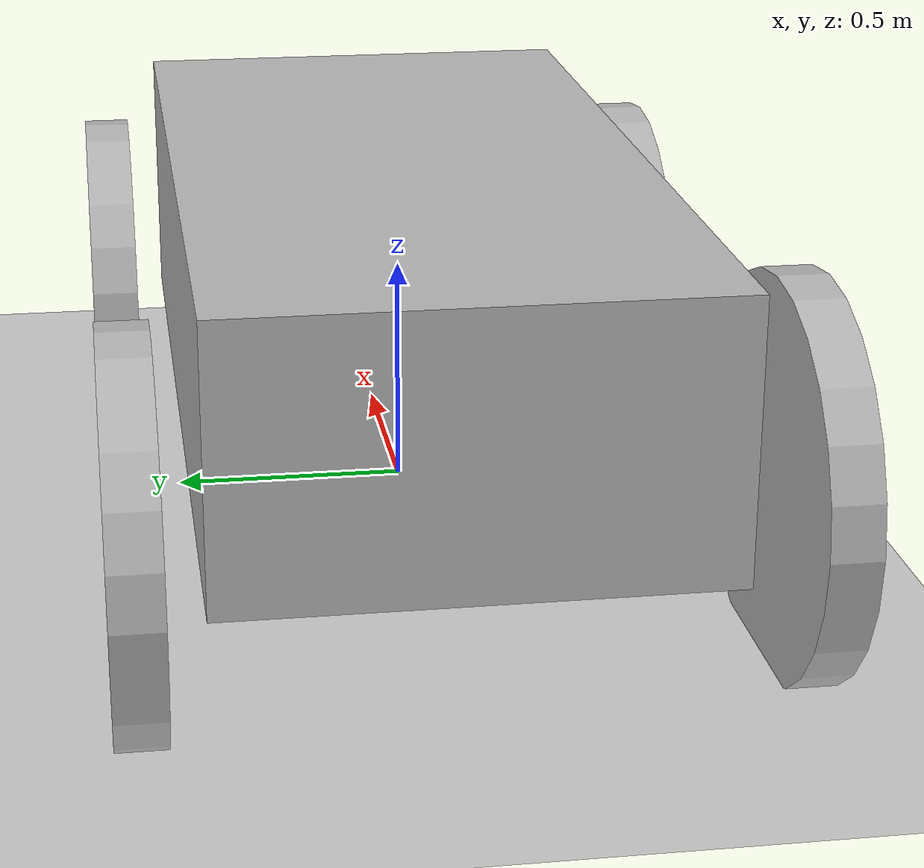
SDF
<?xml version="1.0"?>
<sdf version="1.6">
  <world name="default">

    <include>
      <uri>model://ground_plane</uri>
    </include>

    <include>
      <uri>model://sun</uri>
    </include>

    <model name='vehicle'>
      <pose>0 0 0.325 0 -0 0</pose>

      <link name='chassis'>
        <pose>-0.151427 -0 0.175 0 -0 0</pose>
        <inertial>
          <mass>1.14395</mass>
          <inertia>
            <ixx>0.126164</ixx>
            <ixy>0</ixy>
            <ixz>0</ixz>
            <iyy>0.416519</iyy>
            <iyz>0</iyz>
            <izz>0.481014</izz>
          </inertia>
        </inertial>
        <visual name='visual'>
          <geometry>
            <box>
              <size>2.01142 1 0.568726</size>
            </box>
          </geometry>
        </visual>
        <collision name='collision'>
          <geometry>
            <box>
              <size>2.01142 1 0.568726</size>
            </box>
          </geometry>
        </collision>
      </link>

      <link name='left_wheel'>
        <pose>0.554283 0.625029 -0.025 -1.5707 0 0</pose>
        <inertial>
          <mass>2</mass>
          <inertia>
            <ixx>0.145833</ixx>
            <ixy>0</ixy>
            <ixz>0</ixz>
            <iyy>0.145833</iyy>
            <iyz>0</iyz>
            <izz>0.125</izz>
          </inertia>
        </inertial>
        <visual name="visual">
          <geometry>
            <cylinder>
              <radius>.4</radius>
              <length>.1</length>
            </cylinder>
          </geometry>
        </visual>
        <collision name="collision">
          <geometry>
            <cylinder>
              <radius>.4</radius>
              <length>.1</length>
            </cylinder>
          </geometry>
          <surface>
            <friction>
              <ode>
                <mu>1</mu>
                <mu2>1</mu2>
                <slip1>0</slip1>
                <slip2>0</slip2>
              </ode>
            </friction>
            <contact>
              <ode>
                <soft_cfm>0</soft_cfm>
                <soft_erp>0.2</soft_erp>
                <kp>1e+13</kp>
                <kd>1</kd>
                <max_vel>0.01</max_vel>
                <min_depth>0.01</min_depth>
              </ode>
            </contact>
          </surface>
        </collision>
      </link>

      <link name='right_wheel'>
        <pose>0.554282 -0.625029 -0.025 -1.5707 0 0</pose>
        <inertial>
          <mass>2</mass>
          <inertia>
            <ixx>0.145833</ixx>
            <ixy>0</ixy>
            <ixz>0</ixz>
            <iyy>0.145833</iyy>
            <iyz>0</iyz>
            <izz>0.125</izz>
          </inertia>
        </inertial>
        <visual name="visual">
          <geometry>
            <cylinder>
              <radius>.4</radius>
              <length>.1</length>
            </cylinder>
          </geometry>
        </visual>
        <collision name="collision">
          <geometry>
            <cylinder>
              <radius>.4</radius>
              <length>.1</length>
            </cylinder>
          </geometry>
          <surface>
            <friction>
              <ode>
                <mu>1</mu>
                <mu2>1</mu2>
                <slip1>0</slip1>
                <slip2>0</slip2>
              </ode>
            </friction>
            <contact>
              <ode>
                <soft_cfm>0</soft_cfm>
                <soft_erp>0.2</soft_erp>
                <kp>1e+13</kp>
                <kd>1</kd>
                <max_vel>0.01</max_vel>
                <min_depth>0.01</min_depth>
              </ode>
            </contact>
          </surface>
        </collision>
      </link>
      <link name='right_rear_wheel'>
        <pose>-0.954282 -0.625029 0.025 -1.5707 0 0</pose>
        <inertial>
          <mass>2</mass>
          <inertia>
            <ixx>0.145833</ixx>
            <ixy>0</ixy>
            <ixz>0</ixz>
            <iyy>0.145833</iyy>
            <iyz>0</iyz>
            <izz>0.125</izz>
          </inertia>
        </inertial>
        <visual name="visual">
          <geometry>
            <cylinder>
              <radius>.4</radius>
              <length>.1</length>
            </cylinder>
          </geometry>
        </visual>
        <collision name="collision">
          <geometry>
            <cylinder>
              <radius>.4</radius>
              <length>.1</length>
            </cylinder>
          </geometry>
          <surface>
            <friction>
              <ode>
                <mu>1</mu>
                <mu2>1</mu2>
                <slip1>0</slip1>
                <slip2>0</slip2>
              </ode>
            </friction>
            <contact>
              <ode>
                <soft_cfm>0</soft_cfm>
                <soft_erp>0.2</soft_erp>
                <kp>1e+13</kp>
                <kd>1</kd>
                <max_vel>0.01</max_vel>
                <min_depth>0.01</min_depth>
              </ode>
            </contact>
          </surface>
        </collision>
      </link>

      <link name='left_rear_wheel'>
        <pose>-0.954282 0.625029 -0.025 -1.5707 0 0</pose>
        <inertial>
          <mass>2</mass>
          <inertia>
            <ixx>0.145833</ixx>
            <ixy>0</ixy>
            <ixz>0</ixz>
            <iyy>0.145833</iyy>
            <iyz>0</iyz>
            <izz>0.125</izz>
          </inertia>
        </inertial>
        <visual name="visual">
          <geometry>
            <cylinder>
              <radius>.4</radius>
              <length>.1</length>
            </cylinder>
          </geometry>
        </visual>
        <collision name="collision">
          <geometry>
            <cylinder>
              <radius>.4</radius>
              <length>.1</length>
            </cylinder>
          </geometry>
          <surface>
            <friction>
              <ode>
                <mu>1</mu>
                <mu2>1</mu2>
                <slip1>0</slip1>
                <slip2>0</slip2>
              </ode>
            </friction>
            <contact>
              <ode>
                <soft_cfm>0</soft_cfm>
                <soft_erp>0.2</soft_erp>
                <kp>1e+13</kp>
                <kd>1</kd>
                <max_vel>0.01</max_vel>
                <min_depth>0.01</min_depth>
              </ode>
            </contact>
          </surface>
        </collision>
      </link>

      <joint name='left_wheel_joint' type='revolute'>
        <parent>chassis</parent>
        <child>left_wheel</child>
        <axis>
          <xyz>0 0 1</xyz>
          <limit>
            <lower>-1.79769e+308</lower>
            <upper>1.79769e+308</upper>
          </limit>
        </axis>
      </joint>

      <joint name='right_wheel_joint' type='revolute'>
        <parent>chassis</parent>
        <child>right_wheel</child>
        <axis>
          <xyz>0 0 1</xyz>
          <limit>
            <lower>-1.79769e+308</lower>
            <upper>1.79769e+308</upper>
          </limit>
        </axis>
      </joint>

      <joint type="revolute" name="right_wheel_hinge">
        <pose>0 0 0.03 0 0 0</pose>
        <child>right_rear_wheel</child>
        <parent>chassis</parent>
        <axis>
          <xyz>0 0 3</xyz>
        </axis>
        <limit>
          <lower>-1.79769e+308</lower>
          <upper>1.79769e+308</upper>
        </limit>
      </joint>

      <joint type="revolute" name="left_wheel_hinge">
        <pose>0 0 0.03 0 0 0</pose>
        <child>left_rear_wheel</child>
        <parent>chassis</parent>
        <axis>
          <xyz>0 0 3</xyz>
        </axis>
        <limit>
          <lower>-1.79769e+308</lower>
          <upper>1.79769e+308</upper>
        </limit>
      </joint>

      <plugin name='diff_drive' filename='libgazebo_ros_diff_drive.so'>

        <ros>
          <namespace>/demo</namespace>
          <argument>cmd_vel:=cmd_demo</argument>
          <argument>odom:=odom_demo</argument>
        </ros>

        <!-- wheels -->
        <right_rear_joint>right_wheel_hinge</right_rear_joint>
        <left_rear_joint>left_wheel_hinge</left_rear_joint>

        <!-- kinematics -->
        <wheel_separation>1.25</wheel_separation>
        <wheel_diameter>0.6</wheel_diameter>

        <!-- limits -->
        <max_wheel_torque>20</max_wheel_torque>
        <max_wheel_acceleration>1.0</max_wheel_acceleration>

        <!-- output -->
        <publish_odom>true</publish_odom>
        <publish_odom_tf>true</publish_odom_tf>
        <publish_wheel_tf>true</publish_wheel_tf>

        <odometry_frame>odom_demo</odometry_frame>
        <robot_base_frame>chassis</robot_base_frame>

      </plugin>

    </model>

  </world>
</sdf>
